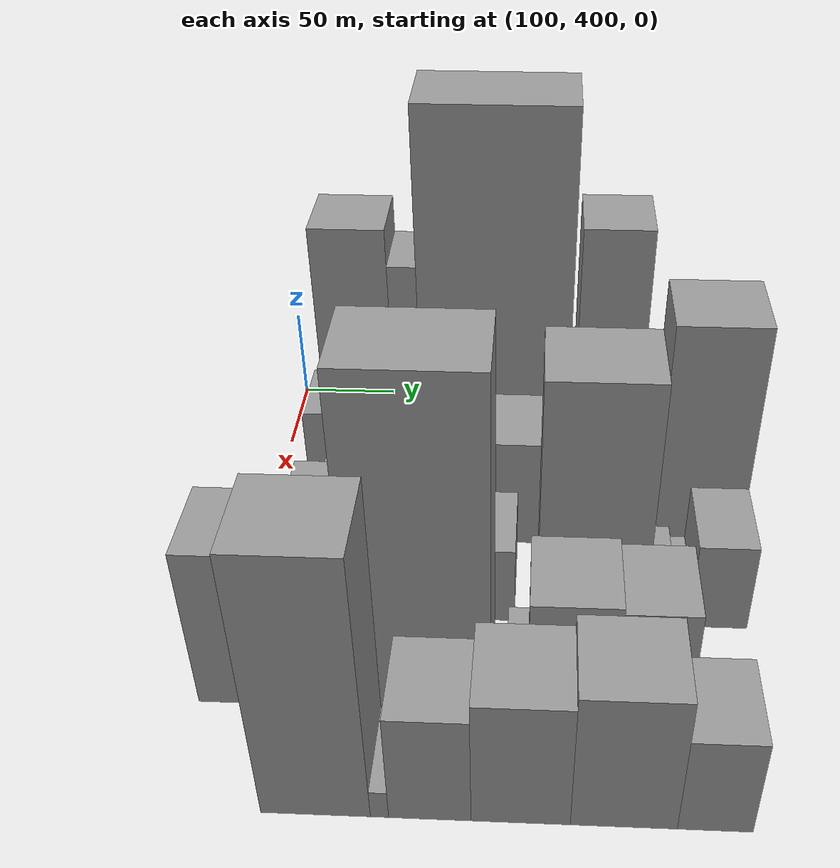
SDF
<sdf version="1.6">
 <world name="default">
  <model name="building_41">
   <static>1</static>
   <pose>100.0000 433.2024 0 0.000000 0.000000 0.000000</pose>
   <link name="link">
    <pose>0 0 57.00 0 0 0</pose>
    <collision name="collision"><geometry><box><size>40.0000 39.6624 114.0000</size></box></geometry></collision>
    <visual name="visual">
     <cast_shadows>0</cast_shadows>
     <geometry><box><size>40.0000 39.6624 114.0000</size></box></geometry>
     <material>
      <script>
       <uri>model://grey_wall/materials/scripts</uri>
       <uri>model://grey_wall/materials/textures</uri>
       <name>vrc/grey_wall</name>
      </script>
     </material>
    </visual>
   </link>
  </model>
  <model name="building_42">
   <static>1</static>
   <pose>100.0000 467.9742 0 0.000000 0.000000 0.000000</pose>
   <link name="link">
    <pose>0 0 46.50 0 0 0</pose>
    <collision name="collision"><geometry><box><size>40.0000 29.8813 93.0000</size></box></geometry></collision>
    <visual name="visual">
     <cast_shadows>0</cast_shadows>
     <geometry><box><size>40.0000 29.8813 93.0000</size></box></geometry>
     <material>
      <script>
       <uri>model://grey_wall/materials/scripts</uri>
       <uri>model://grey_wall/materials/textures</uri>
       <name>vrc/grey_wall</name>
      </script>
     </material>
    </visual>
   </link>
  </model>
  <model name="building_43">
   <static>1</static>
   <pose>100.0000 500.9659 0 0.000000 0.000000 0.000000</pose>
   <link name="link">
    <pose>0 0 36.00 0 0 0</pose>
    <collision name="collision"><geometry><box><size>40.0000 36.1020 72.0000</size></box></geometry></collision>
    <visual name="visual">
     <cast_shadows>0</cast_shadows>
     <geometry><box><size>40.0000 36.1020 72.0000</size></box></geometry>
     <material>
      <script>
       <uri>model://grey_wall/materials/scripts</uri>
       <uri>model://grey_wall/materials/textures</uri>
       <name>vrc/grey_wall</name>
      </script>
     </material>
    </visual>
   </link>
  </model>
  <model name="building_44">
   <static>1</static>
   <pose>100.0000 537.4547 0 0.000000 0.000000 0.000000</pose>
   <link name="link">
    <pose>0 0 24.00 0 0 0</pose>
    <collision name="collision"><geometry><box><size>40.0000 26.8757 48.0000</size></box></geometry></collision>
    <visual name="visual">
     <cast_shadows>0</cast_shadows>
     <geometry><box><size>40.0000 26.8757 48.0000</size></box></geometry>
     <material>
      <script>
       <uri>model://grey_wall/materials/scripts</uri>
       <uri>model://grey_wall/materials/textures</uri>
       <name>vrc/grey_wall</name>
      </script>
     </material>
    </visual>
   </link>
  </model>
  <model name="building_45">
   <static>1</static>
   <pose>100.0000 572.2795 0 0.000000 0.000000 0.000000</pose>
   <link name="link">
    <pose>0 0 58.50 0 0 0</pose>
    <collision name="collision"><geometry><box><size>40.0000 36.7738 117.0000</size></box></geometry></collision>
    <visual name="visual">
     <cast_shadows>0</cast_shadows>
     <geometry><box><size>40.0000 36.7738 117.0000</size></box></geometry>
     <material>
      <script>
       <uri>model://grey_wall/materials/scripts</uri>
       <uri>model://grey_wall/materials/textures</uri>
       <name>vrc/grey_wall</name>
      </script>
     </material>
    </visual>
   </link>
  </model>
  <model name="building_89">
   <static>1</static>
   <pose>152.0000 423.0225 0 0.000000 0.000000 0.000000</pose>
   <link name="link">
    <pose>0 0 18.00 0 0 0</pose>
    <collision name="collision"><geometry><box><size>40.0000 20.3427 36.0000</size></box></geometry></collision>
    <visual name="visual">
     <cast_shadows>0</cast_shadows>
     <geometry><box><size>40.0000 20.3427 36.0000</size></box></geometry>
     <material>
      <script>
       <uri>model://grey_wall/materials/scripts</uri>
       <uri>model://grey_wall/materials/textures</uri>
       <name>vrc/grey_wall</name>
      </script>
     </material>
    </visual>
   </link>
  </model>
  <model name="building_90">
   <static>1</static>
   <pose>152.0000 453.8125 0 0.000000 0.000000 0.000000</pose>
   <link name="link">
    <pose>0 0 34.50 0 0 0</pose>
    <collision name="collision"><geometry><box><size>40.0000 41.2373 69.0000</size></box></geometry></collision>
    <visual name="visual">
     <cast_shadows>0</cast_shadows>
     <geometry><box><size>40.0000 41.2373 69.0000</size></box></geometry>
     <material>
      <script>
       <uri>model://grey_wall/materials/scripts</uri>
       <uri>model://grey_wall/materials/textures</uri>
       <name>vrc/grey_wall</name>
      </script>
     </material>
    </visual>
   </link>
  </model>
  <model name="building_91">
   <static>1</static>
   <pose>152.0000 511.4278 0 0.000000 0.000000 0.000000</pose>
   <link name="link">
    <pose>0 0 100.50 0 0 0</pose>
    <collision name="collision"><geometry><box><size>40.0000 73.9934 201.0000</size></box></geometry></collision>
    <visual name="visual">
     <cast_shadows>0</cast_shadows>
     <geometry><box><size>40.0000 73.9934 201.0000</size></box></geometry>
     <material>
      <script>
       <uri>model://grey_wall/materials/scripts</uri>
       <uri>model://grey_wall/materials/textures</uri>
       <name>vrc/grey_wall</name>
      </script>
     </material>
    </visual>
   </link>
  </model>
  <model name="building_92">
   <static>1</static>
   <pose>152.0000 555.3570 0 0.000000 0.000000 0.000000</pose>
   <link name="link">
    <pose>0 0 9.00 0 0 0</pose>
    <collision name="collision"><geometry><box><size>40.0000 7.8649 18.0000</size></box></geometry></collision>
    <visual name="visual">
     <cast_shadows>0</cast_shadows>
     <geometry><box><size>40.0000 7.8649 18.0000</size></box></geometry>
     <material>
      <script>
       <uri>model://grey_wall/materials/scripts</uri>
       <uri>model://grey_wall/materials/textures</uri>
       <name>vrc/grey_wall</name>
      </script>
     </material>
    </visual>
   </link>
  </model>
  <model name="building_93">
   <static>1</static>
   <pose>152.0000 567.6566 0 0.000000 0.000000 0.000000</pose>
   <link name="link">
    <pose>0 0 12.00 0 0 0</pose>
    <collision name="collision"><geometry><box><size>40.0000 10.7344 24.0000</size></box></geometry></collision>
    <visual name="visual">
     <cast_shadows>0</cast_shadows>
     <geometry><box><size>40.0000 10.7344 24.0000</size></box></geometry>
     <material>
      <script>
       <uri>model://grey_wall/materials/scripts</uri>
       <uri>model://grey_wall/materials/textures</uri>
       <name>vrc/grey_wall</name>
      </script>
     </material>
    </visual>
   </link>
  </model>
  <model name="building_94">
   <static>1</static>
   <pose>152.0000 583.8742 0 0.000000 0.000000 0.000000</pose>
   <link name="link">
    <pose>0 0 21.00 0 0 0</pose>
    <collision name="collision"><geometry><box><size>40.0000 21.7008 42.0000</size></box></geometry></collision>
    <visual name="visual">
     <cast_shadows>0</cast_shadows>
     <geometry><box><size>40.0000 21.7008 42.0000</size></box></geometry>
     <material>
      <script>
       <uri>model://grey_wall/materials/scripts</uri>
       <uri>model://grey_wall/materials/textures</uri>
       <name>vrc/grey_wall</name>
      </script>
     </material>
    </visual>
   </link>
  </model>
  <model name="building_95">
   <static>1</static>
   <pose>152.0000 605.4654 0 0.000000 0.000000 0.000000</pose>
   <link name="link">
    <pose>0 0 13.50 0 0 0</pose>
    <collision name="collision"><geometry><box><size>40.0000 11.4816 27.0000</size></box></geometry></collision>
    <visual name="visual">
     <cast_shadows>0</cast_shadows>
     <geometry><box><size>40.0000 11.4816 27.0000</size></box></geometry>
     <material>
      <script>
       <uri>model://grey_wall/materials/scripts</uri>
       <uri>model://grey_wall/materials/textures</uri>
       <name>vrc/grey_wall</name>
      </script>
     </material>
    </visual>
   </link>
  </model>
  <model name="building_138">
   <static>1</static>
   <pose>204.0000 432.6912 0 0.000000 0.000000 0.000000</pose>
   <link name="link">
    <pose>0 0 12.00 0 0 0</pose>
    <collision name="collision"><geometry><box><size>40.0000 10.5186 24.0000</size></box></geometry></collision>
    <visual name="visual">
     <cast_shadows>0</cast_shadows>
     <geometry><box><size>40.0000 10.5186 24.0000</size></box></geometry>
     <material>
      <script>
       <uri>model://grey_wall/materials/scripts</uri>
       <uri>model://grey_wall/materials/textures</uri>
       <name>vrc/grey_wall</name>
      </script>
     </material>
    </visual>
   </link>
  </model>
  <model name="building_139">
   <static>1</static>
   <pose>204.0000 457.9755 0 0.000000 0.000000 0.000000</pose>
   <link name="link">
    <pose>0 0 21.00 0 0 0</pose>
    <collision name="collision"><geometry><box><size>40.0000 24.0501 42.0000</size></box></geometry></collision>
    <visual name="visual">
     <cast_shadows>0</cast_shadows>
     <geometry><box><size>40.0000 24.0501 42.0000</size></box></geometry>
     <material>
      <script>
       <uri>model://grey_wall/materials/scripts</uri>
       <uri>model://grey_wall/materials/textures</uri>
       <name>vrc/grey_wall</name>
      </script>
     </material>
    </visual>
   </link>
  </model>
  <model name="building_140">
   <static>1</static>
   <pose>204.0000 494.2573 0 0.000000 0.000000 0.000000</pose>
   <link name="link">
    <pose>0 0 25.50 0 0 0</pose>
    <collision name="collision"><geometry><box><size>40.0000 30.5135 51.0000</size></box></geometry></collision>
    <visual name="visual">
     <cast_shadows>0</cast_shadows>
     <geometry><box><size>40.0000 30.5135 51.0000</size></box></geometry>
     <material>
      <script>
       <uri>model://grey_wall/materials/scripts</uri>
       <uri>model://grey_wall/materials/textures</uri>
       <name>vrc/grey_wall</name>
      </script>
     </material>
    </visual>
   </link>
  </model>
  <model name="building_141">
   <static>1</static>
   <pose>204.0000 524.8985 0 0.000000 0.000000 0.000000</pose>
   <link name="link">
    <pose>0 0 30.00 0 0 0</pose>
    <collision name="collision"><geometry><box><size>40.0000 30.7688 60.0000</size></box></geometry></collision>
    <visual name="visual">
     <cast_shadows>0</cast_shadows>
     <geometry><box><size>40.0000 30.7688 60.0000</size></box></geometry>
     <material>
      <script>
       <uri>model://grey_wall/materials/scripts</uri>
       <uri>model://grey_wall/materials/textures</uri>
       <name>vrc/grey_wall</name>
      </script>
     </material>
    </visual>
   </link>
  </model>
  <model name="building_142">
   <static>1</static>
   <pose>204.0000 569.8486 0 0.000000 0.000000 0.000000</pose>
   <link name="link">
    <pose>0 0 40.50 0 0 0</pose>
    <collision name="collision"><geometry><box><size>40.0000 41.1313 81.0000</size></box></geometry></collision>
    <visual name="visual">
     <cast_shadows>0</cast_shadows>
     <geometry><box><size>40.0000 41.1313 81.0000</size></box></geometry>
     <material>
      <script>
       <uri>model://grey_wall/materials/scripts</uri>
       <uri>model://grey_wall/materials/textures</uri>
       <name>vrc/grey_wall</name>
      </script>
     </material>
    </visual>
   </link>
  </model>
  <model name="building_143">
   <static>1</static>
   <pose>204.0000 611.4502 0 0.000000 0.000000 0.000000</pose>
   <link name="link">
    <pose>0 0 63.00 0 0 0</pose>
    <collision name="collision"><geometry><box><size>40.0000 42.0719 126.0000</size></box></geometry></collision>
    <visual name="visual">
     <cast_shadows>0</cast_shadows>
     <geometry><box><size>40.0000 42.0719 126.0000</size></box></geometry>
     <material>
      <script>
       <uri>model://grey_wall/materials/scripts</uri>
       <uri>model://grey_wall/materials/textures</uri>
       <name>vrc/grey_wall</name>
      </script>
     </material>
    </visual>
   </link>
  </model>
  <model name="building_184">
   <static>1</static>
   <pose>256.0000 439.8909 0 0.000000 0.000000 0.000000</pose>
   <link name="link">
    <pose>0 0 28.50 0 0 0</pose>
    <collision name="collision"><geometry><box><size>40.0000 33.5093 57.0000</size></box></geometry></collision>
    <visual name="visual">
     <cast_shadows>0</cast_shadows>
     <geometry><box><size>40.0000 33.5093 57.0000</size></box></geometry>
     <material>
      <script>
       <uri>model://grey_wall/materials/scripts</uri>
       <uri>model://grey_wall/materials/textures</uri>
       <name>vrc/grey_wall</name>
      </script>
     </material>
    </visual>
   </link>
  </model>
  <model name="building_185">
   <static>1</static>
   <pose>256.0000 479.4645 0 0.000000 0.000000 0.000000</pose>
   <link name="link">
    <pose>0 0 66.00 0 0 0</pose>
    <collision name="collision"><geometry><box><size>40.0000 45.6380 132.0000</size></box></geometry></collision>
    <visual name="visual">
     <cast_shadows>0</cast_shadows>
     <geometry><box><size>40.0000 45.6380 132.0000</size></box></geometry>
     <material>
      <script>
       <uri>model://grey_wall/materials/scripts</uri>
       <uri>model://grey_wall/materials/textures</uri>
       <name>vrc/grey_wall</name>
      </script>
     </material>
    </visual>
   </link>
  </model>
  <model name="building_186">
   <static>1</static>
   <pose>256.0000 513.5985 0 0.000000 0.000000 0.000000</pose>
   <link name="link">
    <pose>0 0 21.00 0 0 0</pose>
    <collision name="collision"><geometry><box><size>40.0000 22.6300 42.0000</size></box></geometry></collision>
    <visual name="visual">
     <cast_shadows>0</cast_shadows>
     <geometry><box><size>40.0000 22.6300 42.0000</size></box></geometry>
     <material>
      <script>
       <uri>model://grey_wall/materials/scripts</uri>
       <uri>model://grey_wall/materials/textures</uri>
       <name>vrc/grey_wall</name>
      </script>
     </material>
    </visual>
   </link>
  </model>
  <model name="building_187">
   <static>1</static>
   <pose>256.0000 559.2160 0 0.000000 0.000000 0.000000</pose>
   <link name="link">
    <pose>0 0 66.00 0 0 0</pose>
    <collision name="collision"><geometry><box><size>40.0000 48.6050 132.0000</size></box></geometry></collision>
    <visual name="visual">
     <cast_shadows>0</cast_shadows>
     <geometry><box><size>40.0000 48.6050 132.0000</size></box></geometry>
     <material>
      <script>
       <uri>model://grey_wall/materials/scripts</uri>
       <uri>model://grey_wall/materials/textures</uri>
       <name>vrc/grey_wall</name>
      </script>
     </material>
    </visual>
   </link>
  </model>
  <model name="building_188">
   <static>1</static>
   <pose>256.0000 589.5035 0 0.000000 0.000000 0.000000</pose>
   <link name="link">
    <pose>0 0 12.00 0 0 0</pose>
    <collision name="collision"><geometry><box><size>40.0000 11.9699 24.0000</size></box></geometry></collision>
    <visual name="visual">
     <cast_shadows>0</cast_shadows>
     <geometry><box><size>40.0000 11.9699 24.0000</size></box></geometry>
     <material>
      <script>
       <uri>model://grey_wall/materials/scripts</uri>
       <uri>model://grey_wall/materials/textures</uri>
       <name>vrc/grey_wall</name>
      </script>
     </material>
    </visual>
   </link>
  </model>
  <model name="building_189">
   <static>1</static>
   <pose>256.0000 599.4248 0 0.000000 0.000000 0.000000</pose>
   <link name="link">
    <pose>0 0 9.00 0 0 0</pose>
    <collision name="collision"><geometry><box><size>40.0000 7.8727 18.0000</size></box></geometry></collision>
    <visual name="visual">
     <cast_shadows>0</cast_shadows>
     <geometry><box><size>40.0000 7.8727 18.0000</size></box></geometry>
     <material>
      <script>
       <uri>model://grey_wall/materials/scripts</uri>
       <uri>model://grey_wall/materials/textures</uri>
       <name>vrc/grey_wall</name>
      </script>
     </material>
    </visual>
   </link>
  </model>
  <model name="building_190">
   <static>1</static>
   <pose>256.0000 616.3459 0 0.000000 0.000000 0.000000</pose>
   <link name="link">
    <pose>0 0 24.00 0 0 0</pose>
    <collision name="collision"><geometry><box><size>40.0000 25.9695 48.0000</size></box></geometry></collision>
    <visual name="visual">
     <cast_shadows>0</cast_shadows>
     <geometry><box><size>40.0000 25.9695 48.0000</size></box></geometry>
     <material>
      <script>
       <uri>model://grey_wall/materials/scripts</uri>
       <uri>model://grey_wall/materials/textures</uri>
       <name>vrc/grey_wall</name>
      </script>
     </material>
    </visual>
   </link>
  </model>
  <model name="building_238">
   <static>1</static>
   <pose>308.0000 415.0241 0 0.000000 0.000000 0.000000</pose>
   <link name="link">
    <pose>0 0 42.00 0 0 0</pose>
    <collision name="collision"><geometry><box><size>40.0000 42.4391 84.0000</size></box></geometry></collision>
    <visual name="visual">
     <cast_shadows>0</cast_shadows>
     <geometry><box><size>40.0000 42.4391 84.0000</size></box></geometry>
     <material>
      <script>
       <uri>model://grey_wall/materials/scripts</uri>
       <uri>model://grey_wall/materials/textures</uri>
       <name>vrc/grey_wall</name>
      </script>
     </material>
    </visual>
   </link>
  </model>
  <model name="building_239">
   <static>1</static>
   <pose>308.0000 452.6810 0 0.000000 0.000000 0.000000</pose>
   <link name="link">
    <pose>0 0 13.50 0 0 0</pose>
    <collision name="collision"><geometry><box><size>40.0000 12.8746 27.0000</size></box></geometry></collision>
    <visual name="visual">
     <cast_shadows>0</cast_shadows>
     <geometry><box><size>40.0000 12.8746 27.0000</size></box></geometry>
     <material>
      <script>
       <uri>model://grey_wall/materials/scripts</uri>
       <uri>model://grey_wall/materials/textures</uri>
       <name>vrc/grey_wall</name>
      </script>
     </material>
    </visual>
   </link>
  </model>
  <model name="building_240">
   <static>1</static>
   <pose>308.0000 487.8612 0 0.000000 0.000000 0.000000</pose>
   <link name="link">
    <pose>0 0 85.50 0 0 0</pose>
    <collision name="collision"><geometry><box><size>40.0000 57.4859 171.0000</size></box></geometry></collision>
    <visual name="visual">
     <cast_shadows>0</cast_shadows>
     <geometry><box><size>40.0000 57.4859 171.0000</size></box></geometry>
     <material>
      <script>
       <uri>model://grey_wall/materials/scripts</uri>
       <uri>model://grey_wall/materials/textures</uri>
       <name>vrc/grey_wall</name>
      </script>
     </material>
    </visual>
   </link>
  </model>
  <model name="building_241">
   <static>1</static>
   <pose>308.0000 527.1233 0 0.000000 0.000000 0.000000</pose>
   <link name="link">
    <pose>0 0 10.50 0 0 0</pose>
    <collision name="collision"><geometry><box><size>40.0000 9.0381 21.0000</size></box></geometry></collision>
    <visual name="visual">
     <cast_shadows>0</cast_shadows>
     <geometry><box><size>40.0000 9.0381 21.0000</size></box></geometry>
     <material>
      <script>
       <uri>model://grey_wall/materials/scripts</uri>
       <uri>model://grey_wall/materials/textures</uri>
       <name>vrc/grey_wall</name>
      </script>
     </material>
    </visual>
   </link>
  </model>
  <model name="building_242">
   <static>1</static>
   <pose>308.0000 550.0235 0 0.000000 0.000000 0.000000</pose>
   <link name="link">
    <pose>0 0 31.50 0 0 0</pose>
    <collision name="collision"><geometry><box><size>40.0000 36.7624 63.0000</size></box></geometry></collision>
    <visual name="visual">
     <cast_shadows>0</cast_shadows>
     <geometry><box><size>40.0000 36.7624 63.0000</size></box></geometry>
     <material>
      <script>
       <uri>model://grey_wall/materials/scripts</uri>
       <uri>model://grey_wall/materials/textures</uri>
       <name>vrc/grey_wall</name>
      </script>
     </material>
    </visual>
   </link>
  </model>
  <model name="building_243">
   <static>1</static>
   <pose>308.0000 583.7509 0 0.000000 0.000000 0.000000</pose>
   <link name="link">
    <pose>0 0 30.00 0 0 0</pose>
    <collision name="collision"><geometry><box><size>40.0000 30.6923 60.0000</size></box></geometry></collision>
    <visual name="visual">
     <cast_shadows>0</cast_shadows>
     <geometry><box><size>40.0000 30.6923 60.0000</size></box></geometry>
     <material>
      <script>
       <uri>model://grey_wall/materials/scripts</uri>
       <uri>model://grey_wall/materials/textures</uri>
       <name>vrc/grey_wall</name>
      </script>
     </material>
    </visual>
   </link>
  </model>
  <model name="building_288">
   <static>1</static>
   <pose>360.0000 451.8515 0 0.000000 0.000000 0.000000</pose>
   <link name="link">
    <pose>0 0 67.50 0 0 0</pose>
    <collision name="collision"><geometry><box><size>40.0000 42.1868 135.0000</size></box></geometry></collision>
    <visual name="visual">
     <cast_shadows>0</cast_shadows>
     <geometry><box><size>40.0000 42.1868 135.0000</size></box></geometry>
     <material>
      <script>
       <uri>model://grey_wall/materials/scripts</uri>
       <uri>model://grey_wall/materials/textures</uri>
       <name>vrc/grey_wall</name>
      </script>
     </material>
    </visual>
   </link>
  </model>
  <model name="building_289">
   <static>1</static>
   <pose>360.0000 476.4226 0 0.000000 0.000000 0.000000</pose>
   <link name="link">
    <pose>0 0 7.50 0 0 0</pose>
    <collision name="collision"><geometry><box><size>40.0000 6.9554 15.0000</size></box></geometry></collision>
    <visual name="visual">
     <cast_shadows>0</cast_shadows>
     <geometry><box><size>40.0000 6.9554 15.0000</size></box></geometry>
     <material>
      <script>
       <uri>model://grey_wall/materials/scripts</uri>
       <uri>model://grey_wall/materials/textures</uri>
       <name>vrc/grey_wall</name>
      </script>
     </material>
    </visual>
   </link>
  </model>
  <model name="building_290">
   <static>1</static>
   <pose>360.0000 495.6550 0 0.000000 0.000000 0.000000</pose>
   <link name="link">
    <pose>0 0 28.50 0 0 0</pose>
    <collision name="collision"><geometry><box><size>40.0000 31.5093 57.0000</size></box></geometry></collision>
    <visual name="visual">
     <cast_shadows>0</cast_shadows>
     <geometry><box><size>40.0000 31.5093 57.0000</size></box></geometry>
     <material>
      <script>
       <uri>model://grey_wall/materials/scripts</uri>
       <uri>model://grey_wall/materials/textures</uri>
       <name>vrc/grey_wall</name>
      </script>
     </material>
    </visual>
   </link>
  </model>
  <model name="building_291">
   <static>1</static>
   <pose>360.0000 530.2545 0 0.000000 0.000000 0.000000</pose>
   <link name="link">
    <pose>0 0 33.00 0 0 0</pose>
    <collision name="collision"><geometry><box><size>40.0000 37.6896 66.0000</size></box></geometry></collision>
    <visual name="visual">
     <cast_shadows>0</cast_shadows>
     <geometry><box><size>40.0000 37.6896 66.0000</size></box></geometry>
     <material>
      <script>
       <uri>model://grey_wall/materials/scripts</uri>
       <uri>model://grey_wall/materials/textures</uri>
       <name>vrc/grey_wall</name>
      </script>
     </material>
    </visual>
   </link>
  </model>
  <model name="building_292">
   <static>1</static>
   <pose>360.0000 569.3147 0 0.000000 0.000000 0.000000</pose>
   <link name="link">
    <pose>0 0 36.00 0 0 0</pose>
    <collision name="collision"><geometry><box><size>40.0000 40.4309 72.0000</size></box></geometry></collision>
    <visual name="visual">
     <cast_shadows>0</cast_shadows>
     <geometry><box><size>40.0000 40.4309 72.0000</size></box></geometry>
     <material>
      <script>
       <uri>model://grey_wall/materials/scripts</uri>
       <uri>model://grey_wall/materials/textures</uri>
       <name>vrc/grey_wall</name>
      </script>
     </material>
    </visual>
   </link>
  </model>
  <model name="building_293">
   <static>1</static>
   <pose>360.0000 603.7656 0 0.000000 0.000000 0.000000</pose>
   <link name="link">
    <pose>0 0 25.50 0 0 0</pose>
    <collision name="collision"><geometry><box><size>40.0000 28.4710 51.0000</size></box></geometry></collision>
    <visual name="visual">
     <cast_shadows>0</cast_shadows>
     <geometry><box><size>40.0000 28.4710 51.0000</size></box></geometry>
     <material>
      <script>
       <uri>model://grey_wall/materials/scripts</uri>
       <uri>model://grey_wall/materials/textures</uri>
       <name>vrc/grey_wall</name>
      </script>
     </material>
    </visual>
   </link>
  </model>
 </world>
</sdf>
